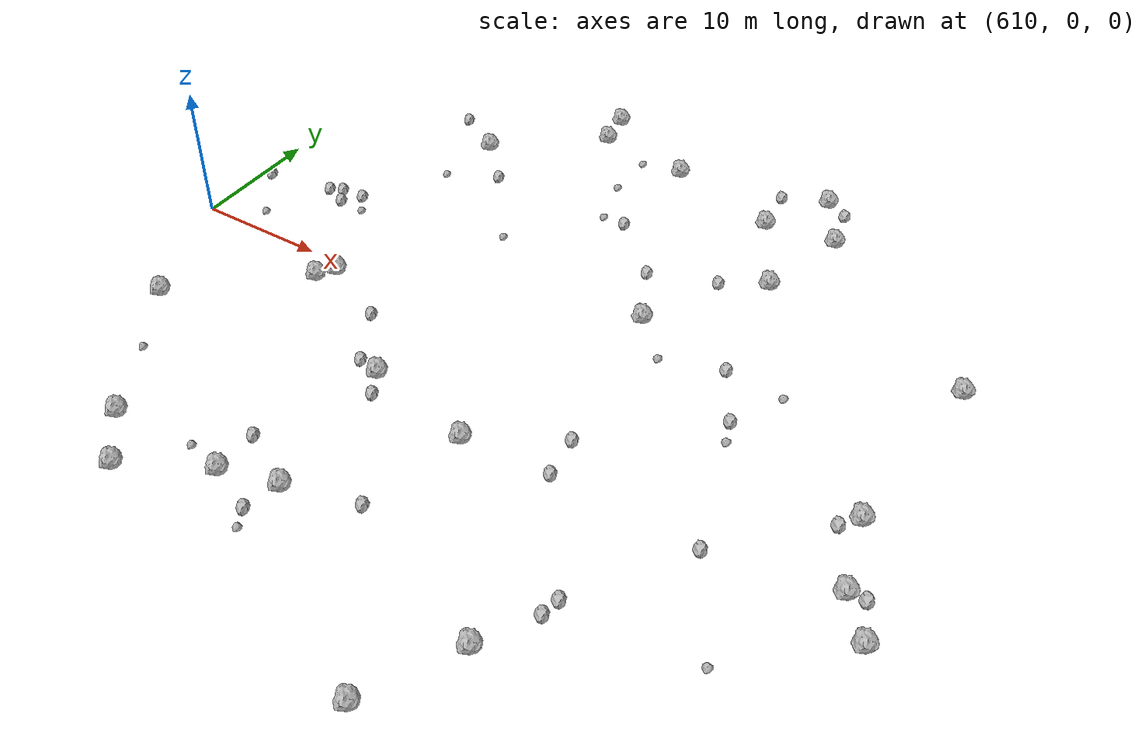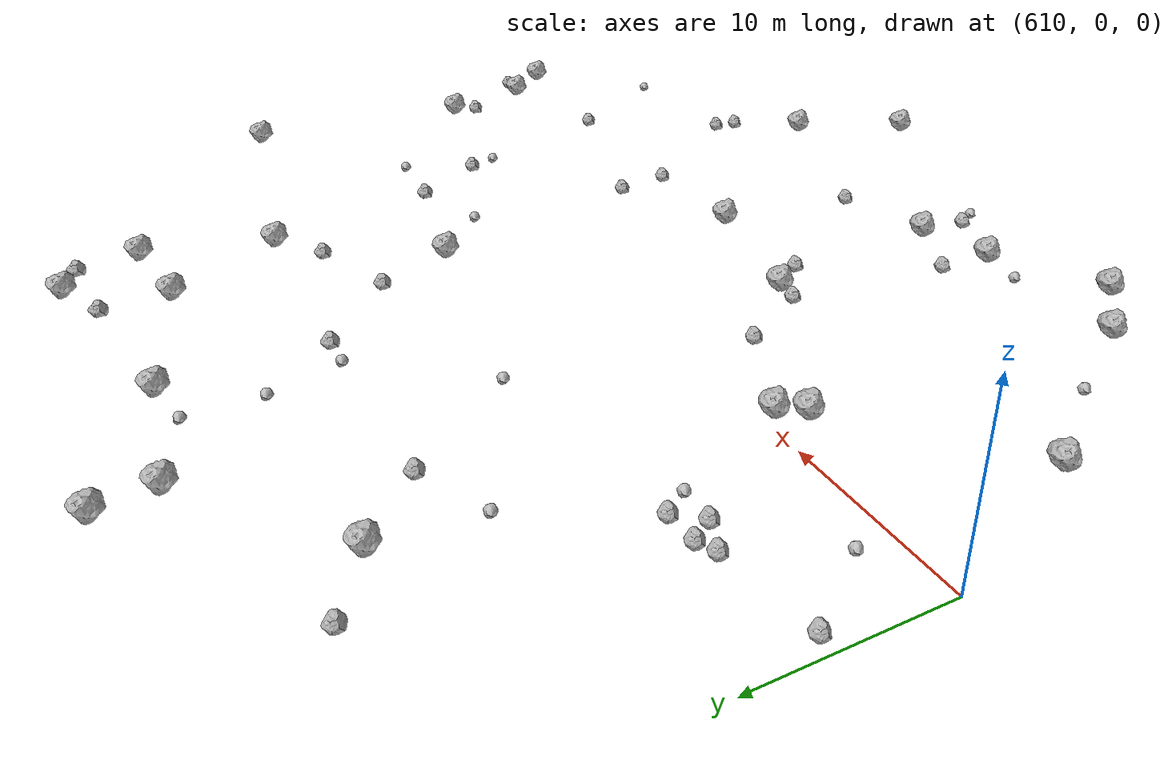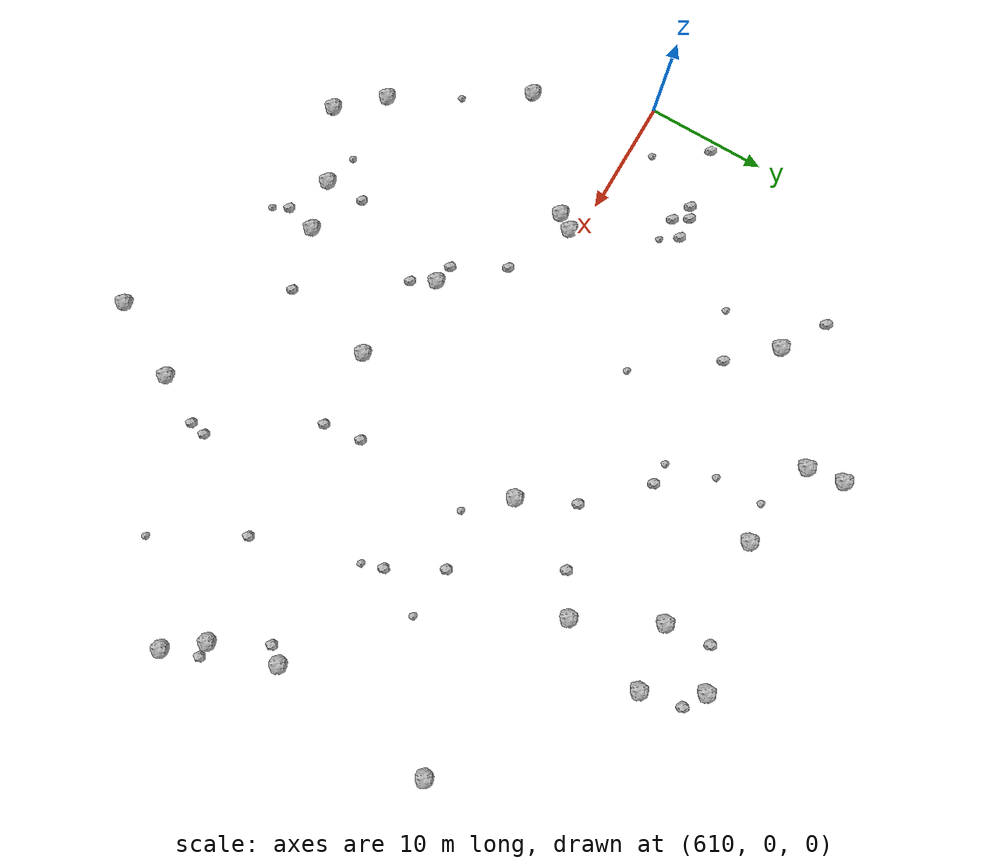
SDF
<sdf version="1.6">
 <world name="default">
  <include><uri>model://sun</uri></include>
  <model name="rock1_16_3">
   <include><uri>model://rock1</uri><pose>649.7352474417762 26.16658528668269 0.5 0 0 0</pose></include>
  </model>
  <model name="rock1_16_4">
   <include><uri>model://rock1</uri><pose>623.1349012387677 18.654360518773622 0.5 0 0 0</pose></include>
  </model>
  <model name="rock1_16_5">
   <include><uri>model://rock1</uri><pose>646.8217932762175 21.05856727474702 0.5 0 0 0</pose></include>
  </model>
  <model name="rock1_16_6">
   <include><uri>model://rock1</uri><pose>633.7301108429905 -19.05529590932435 0.5 0 0 0</pose></include>
  </model>
  <model name="rock1_16_7">
   <include><uri>model://rock1</uri><pose>630.7039135184153 24.862247421329187 0.5 0 0 0</pose></include>
  </model>
  <model name="rock1_16_8">
   <include><uri>model://rock1</uri><pose>629.6098060316671 -20.12324878120122 0.5 0 0 0</pose></include>
  </model>
  <model name="rock1_16_9">
   <include><uri>model://rock1</uri><pose>646.8017710745926 -28.646881162760096 0.5 0 0 0</pose></include>
  </model>
  <model name="rock1_16_10">
   <include><uri>model://rock1</uri><pose>614.079141842091 -9.519584483258555 0.5 0 0 0</pose></include>
  </model>
  <model name="rock1_16_11">
   <include><uri>model://rock1</uri><pose>620.6473997177376 -19.878077676086757 0.5 0 0 0</pose></include>
  </model>
  <model name="rock1_16_12">
   <include><uri>model://rock1</uri><pose>667.9139004176373 -10.810357877721106 0.5 0 0 0</pose></include>
  </model>
  <model name="rock1_16_13">
   <include><uri>model://rock1</uri><pose>638.1017794281979 23.682312161270204 0.5 0 0 0</pose></include>
  </model>
  <model name="rock1_16_14">
   <include><uri>model://rock1</uri><pose>630.229842422932 27.83650436144847 0.5 0 0 0</pose></include>
  </model>
  <model name="rock1_16_15">
   <include><uri>model://rock1</uri><pose>665.682609252886 11.151326949813473 0.5 0 0 0</pose></include>
  </model>
  <model name="rock1_16_16">
   <include><uri>model://rock1</uri><pose>622.243990459909 -2.1754078509733468 0.5 0 0 0</pose></include>
  </model>
  <model name="rock1_16_17">
   <include><uri>model://rock1</uri><pose>652.1606878896877 21.730209428856092 0.5 0 0 0</pose></include>
  </model>
  <model name="rock1_16_18">
   <include><uri>model://rock1</uri><pose>640.5494890589317 -9.872625037957889 0.5 0 0 0</pose></include>
  </model>
  <model name="rock1_16_19">
   <include><uri>model://rock1</uri><pose>664.3423633680673 -2.5209581361037188 0.5 0 0 0</pose></include>
  </model>
  <model name="rock1_16_20">
   <include><uri>model://rock1</uri><pose>623.7665163927749 -23.26519583010824 0.5 0 0 0</pose></include>
  </model>
  <model name="rock1_16_21">
   <include><uri>model://rock1</uri><pose>632.3945170850573 -7.945414447207565 0.5 0 0 0</pose></include>
  </model>
  <model name="rock1_16_22">
   <include><uri>model://rock1</uri><pose>650.2146644899173 14.561371536242156 0.5 0 0 0</pose></include>
  </model>
  <model name="rock1_16_23">
   <include><uri>model://rock1</uri><pose>644.3913760436791 6.4246742989119525 0.5 0 0 0</pose></include>
  </model>
  <model name="rock1_16_24">
   <include><uri>model://rock1</uri><pose>650.1095862824025 -22.36412234706808 0.5 0 0 0</pose></include>
  </model>
  <model name="rock1_16_25">
   <include><uri>model://rock1</uri><pose>665.6849749224893 -8.045198213684039 0.5 0 0 0</pose></include>
  </model>
  <model name="rock1_16_26">
   <include><uri>model://rock1</uri><pose>623.0767333571038 -0.8573527863940313 0.5 0 0 0</pose></include>
  </model>
  <model name="rock2_16_0">
   <include><uri>model://rock2</uri><pose>629.5350482202225 -16.813687738977155 0.3 0 0 0</pose></include>
  </model>
  <model name="rock2_16_1">
   <include><uri>model://rock2</uri><pose>617.8786794404381 6.012798785866565 0.3 0 0 0</pose></include>
  </model>
  <model name="rock2_16_2">
   <include><uri>model://rock2</uri><pose>652.5105073544381 -17.17805594017567 0.3 0 0 0</pose></include>
  </model>
  <model name="rock2_16_3">
   <include><uri>model://rock2</uri><pose>651.7792006040031 4.721562213953909 0.3 0 0 0</pose></include>
  </model>
  <model name="rock2_16_4">
   <include><uri>model://rock2</uri><pose>646.9956913404859 -9.460012551009434 0.3 0 0 0</pose></include>
  </model>
  <model name="rock2_16_5">
   <include><uri>model://rock2</uri><pose>626.3383631420057 15.254232663751118 0.3 0 0 0</pose></include>
  </model>
  <model name="rock2_16_6">
   <include><uri>model://rock2</uri><pose>642.2402671364018 10.930206711299853 0.3 0 0 0</pose></include>
  </model>
  <model name="rock2_16_7">
   <include><uri>model://rock2</uri><pose>654.1715899493008 0.5226928970343856 0.3 0 0 0</pose></include>
  </model>
  <model name="rock2_16_8">
   <include><uri>model://rock2</uri><pose>628.3692889870988 -3.486645055360242 0.3 0 0 0</pose></include>
  </model>
  <model name="rock2_16_9">
   <include><uri>model://rock2</uri><pose>610.9133514680894 5.888711828021968 0.3 0 0 0</pose></include>
  </model>
  <model name="rock2_16_10">
   <include><uri>model://rock2</uri><pose>618.942793535751 7.294354937159525 0.3 0 0 0</pose></include>
  </model>
  <model name="rock2_16_11">
   <include><uri>model://rock2</uri><pose>633.4352693205772 -9.775275809442427 0.3 0 0 0</pose></include>
  </model>
  <model name="rock2_16_12">
   <include><uri>model://rock2</uri><pose>652.258661352149 -18.52332058925228 0.3 0 0 0</pose></include>
  </model>
  <model name="rock2_16_13">
   <include><uri>model://rock2</uri><pose>651.5009182423505 25.163020891925036 0.3 0 0 0</pose></include>
  </model>
  <model name="rock2_16_14">
   <include><uri>model://rock2</uri><pose>657.4227118308752 -9.74571317226367 0.3 0 0 0</pose></include>
  </model>
  <model name="rock2_16_15">
   <include><uri>model://rock2</uri><pose>638.940807432926 -17.628492057171684 0.3 0 0 0</pose></include>
  </model>
  <model name="rock2_16_16">
   <include><uri>model://rock2</uri><pose>666.8829387435392 -7.964296655011545 0.3 0 0 0</pose></include>
  </model>
  <model name="rock2_16_17">
   <include><uri>model://rock2</uri><pose>647.1247815809794 12.683031593975144 0.3 0 0 0</pose></include>
  </model>
  <model name="rock2_16_18">
   <include><uri>model://rock2</uri><pose>633.1324758609006 -21.630209847036344 0.3 0 0 0</pose></include>
  </model>
  <model name="rock2_16_19">
   <include><uri>model://rock2</uri><pose>637.8485865702971 15.226817553726939 0.3 0 0 0</pose></include>
  </model>
  <model name="rock2_16_20">
   <include><uri>model://rock2</uri><pose>616.1497153205373 6.746821155944126 0.3 0 0 0</pose></include>
  </model>
  <model name="rock2_16_21">
   <include><uri>model://rock2</uri><pose>630.7326245142228 -7.594236150479649 0.3 0 0 0</pose></include>
  </model>
  <model name="rock2_16_22">
   <include><uri>model://rock2</uri><pose>617.0950333323669 7.200096935044826 0.3 0 0 0</pose></include>
  </model>
  <model name="rock2_16_23">
   <include><uri>model://rock2</uri><pose>646.430791094998 24.81667237738192 0.3 0 0 0</pose></include>
  </model>
  <model name="rock2_16_24">
   <include><uri>model://rock2</uri><pose>619.448767144007 20.971962352020576 0.3 0 0 0</pose></include>
  </model>
  <model name="rock2_16_25">
   <include><uri>model://rock2</uri><pose>646.5926779891608 -6.305557927409232 0.3 0 0 0</pose></include>
  </model>
  <model name="rock2_16_26">
   <include><uri>model://rock2</uri><pose>663.3665973613546 -3.7294090398853257 0.3 0 0 0</pose></include>
  </model>
  <model name="rock3_16_0">
   <include><uri>model://rock3</uri><pose>647.3233933093782 3.303908366977133 0.2 0 0 0</pose></include>
  </model>
  <model name="rock3_16_1">
   <include><uri>model://rock3</uri><pose>656.0786386180803 4.303218915521555 0.2 0 0 0</pose></include>
  </model>
  <model name="rock3_16_2">
   <include><uri>model://rock3</uri><pose>630.9689871551595 8.979342514916986 0.2 0 0 0</pose></include>
  </model>
  <model name="rock3_16_3">
   <include><uri>model://rock3</uri><pose>619.9102091578762 5.866905368735928 0.2 0 0 0</pose></include>
  </model>
  <model name="rock3_16_4">
   <include><uri>model://rock3</uri><pose>636.0129862339547 15.211121548005949 0.2 0 0 0</pose></include>
  </model>
  <model name="rock3_16_5">
   <include><uri>model://rock3</uri><pose>661.4487151826548 -16.672741184334804 0.2 0 0 0</pose></include>
  </model>
  <model name="rock3_16_6">
   <include><uri>model://rock3</uri><pose>622.5097043004619 13.438516510015695 0.2 0 0 0</pose></include>
  </model>
  <model name="rock3_16_7">
   <include><uri>model://rock3</uri><pose>654.7334388177371 -1.2169027576225275 0.2 0 0 0</pose></include>
  </model>
  <model name="rock3_16_8">
   <include><uri>model://rock3</uri><pose>633.7837554567204 -22.940423371064092 0.2 0 0 0</pose></include>
  </model>
  <model name="rock3_16_9">
   <include><uri>model://rock3</uri><pose>613.796785076321 1.8594043282163177 0.2 0 0 0</pose></include>
  </model>
  <model name="rock3_16_10">
   <include><uri>model://rock3</uri><pose>634.9434571072317 23.138259095395696 0.2 0 0 0</pose></include>
  </model>
  <model name="rock3_16_11">
   <include><uri>model://rock3</uri><pose>634.9170753643399 19.180050594587883 0.2 0 0 0</pose></include>
  </model>
  <model name="rock3_16_12">
   <include><uri>model://rock3</uri><pose>617.4040074697936 -14.494131629679964 0.2 0 0 0</pose></include>
  </model>
  <model name="rock3_16_13">
   <include><uri>model://rock3</uri><pose>626.7624564924363 -19.48132745226018 0.2 0 0 0</pose></include>
  </model>
 </world>
</sdf>
